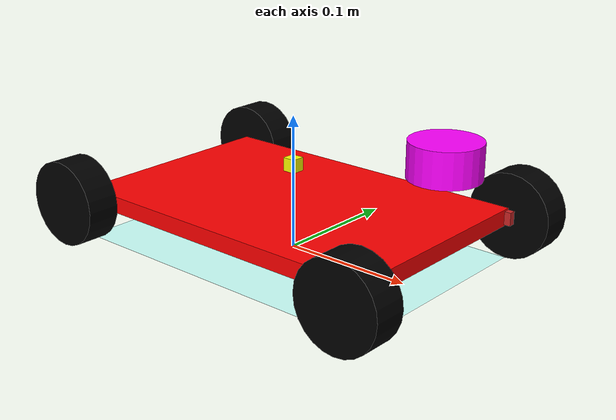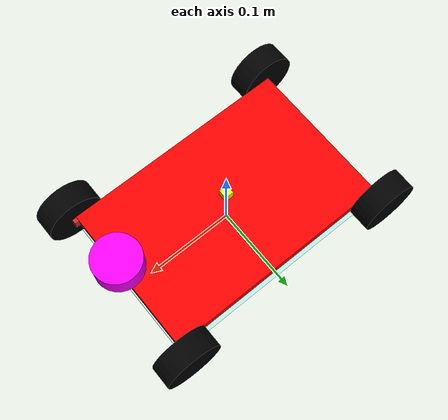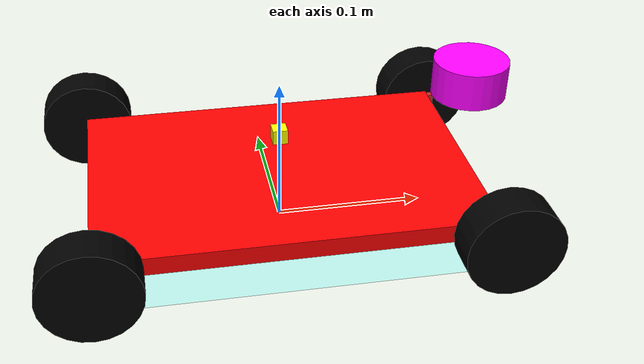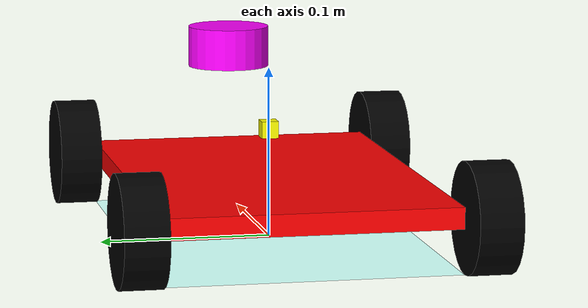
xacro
<?xml version="1.0"?>
<robot xmlns:xacro="http://www.ros.org/wiki/xacro" name="smartcar">
    <xacro:property name="chassis_thickness" value="0.0125"/>
    <xacro:property name="wheelbase_length" value="0.257"/>
    <xacro:property name="wheelbase_width" value="0.17"/>

    <xacro:include filename="wheels.xacro"/>
    <xacro:include filename="materials.xacro"/>

    <link name="base_link">
        <origin xyz="0 0 0" rpy="0 0 0" />
    </link>

    <joint name="base_to_chassis" type="fixed">
        <origin xyz="0 0 ${wheel_radius}" rpy="0 0 0"/>
        <parent link="base_link"/>
        <child link="chassis_link"/>
    </joint>

    <link name="chassis_link">
        <visual>
            <geometry>
                <box size="${wheelbase_length} ${wheelbase_width} ${chassis_thickness}"/>
            </geometry>
            <origin xyz="0 0 0" rpy="0 0 0"/>
            <material name="body_material"/>
        </visual>
        <collision>
            <geometry>
                <box size="${wheelbase_length} ${wheelbase_width} ${chassis_thickness}"/>
            </geometry>
            <origin xyz="0 0 0" rpy="0 0 0"/>
        </collision>
        <inertial>
            <mass value="5.0"/>
            <origin xyz="0 0 0" rpy="0 0 0"/>
            <inertia ixx="0.02" ixy="0.0" ixz="0.0" iyy="0.02" iyz="0.0" izz="0.02"/>
        </inertial>
    </link>

    <gazebo reference="chassis_link">
        <material>Gazebo/Red</material>
    </gazebo>

    <joint name="base_to_footprint" type="fixed">
        <parent link="base_link"/>
        <child link="base_footprint"/>
    </joint>

    <link name="base_footprint">
        <visual>
            <origin xyz="0 0 0.0001" rpy="0 0 0" />
            <geometry>
                <box size="${wheelbase_length} ${wheelbase_width} 0"/>
            </geometry>
            <material name="footprint_material"/>
        </visual>
    </link>

    <gazebo reference="base_footprint">
        <material>Gazebo/TurquoiseGlow</material>
    </gazebo>

    <xacro:front_wheel prefix="left" parent="base_link" x="${wheelbase_length / 2}" y="${wheelbase_width / 2}" z="${wheel_radius}" wheel_offset="${wheel_width / 2}"/>
    <xacro:front_wheel prefix="right" parent="base_link" x="${wheelbase_length / 2}" y="-${wheelbase_width / 2}" z="${wheel_radius}" wheel_offset="-${wheel_width / 2}"/>

    <xacro:back_wheel prefix="left" parent="base_link" x="-${wheelbase_length / 2}" y="${wheelbase_width / 2}" z="${wheel_radius}" wheel_offset="${wheel_width / 2}"/>
    <xacro:back_wheel prefix="right" parent="base_link" x="-${wheelbase_length / 2}" y="-${wheelbase_width / 2}" z="${wheel_radius}" wheel_offset="-${wheel_width / 2}"/>

    <xacro:include filename="sensors.xacro"/>

    <gazebo>
        <plugin name="car_gazebo_plugin" filename="libcar_gazebo_plugin.so"></plugin>
    </gazebo>
</robot>

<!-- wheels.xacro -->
<robot xmlns:xacro="http://www.ros.org/wiki/xacro">
    <xacro:property name="wheel_diameter" value="0.064"/>
    <xacro:property name="wheel_radius" value="${wheel_diameter / 2}"/>
    <xacro:property name="wheel_width" value="0.025"/>
    <xacro:property name="wheel_oriantation" value="${90 * (pi / 180)}"/>
    <xacro:property name="steer_link_size" value="0.01"/>

    <xacro:macro name="front_wheel" params="prefix parent x y z wheel_offset">
        <joint name="front_${prefix}_wheel_steer_joint" type="revolute">
            <origin xyz="${x} ${y} ${z}" rpy="0 0 0"/>
            <parent link="${parent}"/>
            <child link="front_${prefix}_wheel_steer_link"/>
            <axis xyz="0 0 1"/>
            <limit lower="-${45 * (pi / 180)}" upper="${45 * (pi / 180)}" effort="10" velocity="1"/>
        </joint>

        <link name="front_${prefix}_wheel_steer_link">
            <origin xyz="0 0 0" rpy="0 0 0" />
            <visual>
                <geometry>
                    <box size="${steer_link_size} ${steer_link_size} ${steer_link_size}"/>
                </geometry>
                <origin xyz="0 0 0" rpy="0 0 0"/>
            </visual>

            <collision>
                <geometry>
                    <box size="${steer_link_size} ${steer_link_size} ${steer_link_size}"/>
                </geometry>
                <origin xyz="0 0 0" rpy="0 0 0"/>
            </collision>

            <inertial>
                <mass value="0.1"/>
                <origin xyz="0 0 0" rpy="0 0 0"/>
                <inertia ixx="0.00005" ixy="0.0" ixz="0.0" iyy="0.00005" iyz="0.0" izz="0.00005"/>
            </inertial>
        </link>

        <gazebo reference="front_${prefix}_wheel_steer_link">
            <material>Gazebo/Red</material>
        </gazebo>

        <joint name="front_${prefix}_wheel_joint" type="continuous">
            <origin xyz="0 0 0" rpy="0 0 0" />
            <parent link="front_${prefix}_wheel_steer_link"/>
            <child link="front_${prefix}_wheel_link"/>
            <axis xyz="0 1 0"/>
        </joint>

        <link name="front_${prefix}_wheel_link">
            <visual>
                <geometry>
                    <cylinder length="${wheel_width}" radius="${wheel_radius}"/>
                </geometry>
                <origin xyz="0 ${wheel_offset} 0" rpy="${wheel_oriantation} 0 0"/>
                <material name="wheel_material"/>
            </visual>

            <collision>
                <geometry>
                    <cylinder length="${wheel_width}" radius="${wheel_radius}"/>
                </geometry>
                <origin xyz="0 ${wheel_offset} 0" rpy="${wheel_oriantation} 0 0"/>
            </collision>

            <inertial>
                <mass value="0.2"/>
                <origin xyz="0 0 0" rpy="0 0 0"/>
                <inertia ixx="0.0001" ixy="0.0" ixz="0.0" iyy="0.0001" iyz="0.0" izz="0.0001"/>
            </inertial>
        </link>

        <gazebo reference="front_${prefix}_wheel_link">
            <material>Gazebo/Black</material>
        </gazebo>
    </xacro:macro>

    <xacro:macro name="back_wheel" params="prefix parent x y z wheel_offset">
        <joint name="back_${prefix}_wheel_joint" type="continuous">
            <origin xyz="${x} ${y} ${z}" rpy="0 0 0"/>
            <parent link="${parent}"/>
            <child link="back_${prefix}_wheel_link"/>
            <axis xyz="0 1 0"/>
        </joint>

        <link name="back_${prefix}_wheel_link">
            <visual>
                <geometry>
                    <cylinder length="${wheel_width}" radius="${wheel_radius}"/>
                </geometry>
                <origin xyz="0 ${wheel_offset} 0" rpy="${wheel_oriantation} 0 0"/>
                <material name="wheel_material"/>
            </visual>

            <collision>
                <geometry>
                    <cylinder length="${wheel_width}" radius="${wheel_radius}"/>
                </geometry>
                <origin xyz="0 ${wheel_offset} 0" rpy="${wheel_oriantation} 0 0"/>
            </collision>

            <inertial>
                <mass value="0.2"/>
                <origin xyz="0 0 0" rpy="0 0 0"/>
                <inertia ixx="0.0001" ixy="0.0" ixz="0.0" iyy="0.0001" iyz="0.0" izz="0.0001"/>
            </inertial>
        </link>

        <gazebo reference="back_${prefix}_wheel_link">
            <material>Gazebo/Black</material>
        </gazebo>
    </xacro:macro>
</robot>

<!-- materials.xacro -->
<robot xmlns:xacro="http://www.ros.org/wiki/xacro">
    <material name="body_material">
        <color rgba="1 0 0 1"/>
    </material>

    <material name="wheel_material">
        <color rgba="0 0 0 1"/>
    </material>

    <material name="imu_material">
        <color rgba="1 1 0 1"/>
    </material>

    <material name="lidar_material">
        <color rgba="1 0 1 1"/>
    </material>

    <material name="footprint_material">
        <color rgba="0 1 1 0.1"/>
    </material>
</robot>

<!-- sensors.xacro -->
<robot xmlns:xacro="http://www.ros.org/wiki/xacro">
    <xacro:property name="imu_size" value="0.01"/>
    <xacro:property name="lidar_size" value="0.025"/>

    <link name="imu_link">
        <visual>
            <origin xyz="0 0 0" rpy="0 0 0"/>
            <geometry>
                <box size="${imu_size} ${imu_size} ${imu_size}"/>
            </geometry>
            <material name="imu_material"/>
        </visual>

        <collision>
            <origin xyz="0 0 0" rpy="0 0 0"/>
            <geometry>
                <box size="${imu_size} ${imu_size} ${imu_size}"/>
            </geometry>
        </collision>

        <inertial>
            <mass value="0.1"/>
            <origin xyz="0 0 0" rpy="0 0 0"/>
            <inertia ixx="0.00001" ixy="0.0" ixz="0.0" iyy="0.00001" iyz="0.0" izz="0.00001"/>
        </inertial>
    </link>

    <gazebo reference="imu_link">
        <sensor name="my_imu" type="imu">
            <always_on>true</always_on>
            <update_rate>30</update_rate>
            <plugin name="my_imu_plugin" filename="libgazebo_ros_imu_sensor.so">
                <ros>
                    <remapping>~/out:=imu_data</remapping>
                </ros>
            </plugin>
        </sensor>

        <material>Gazebo/Yellow</material>
    </gazebo>

    <joint name="base_to_imu" type="fixed">
        <origin xyz="0 0 ${wheel_diameter}" rpy="0 0 0"/>
        <parent link="base_link"/>
        <child link="imu_link"/>
    </joint>

    <link name="sllidar_base_link">
        <visual>
            <origin xyz="0 0 0" rpy="0 0 0"/>
            <geometry>
                <cylinder length="${lidar_size}" radius="${lidar_size}"/>
            </geometry>
            <material name="lidar_material"/>
        </visual>

        <collision>
            <origin xyz="0 0 0" rpy="0 0 0"/>
            <geometry>
                <cylinder length="${lidar_size}" radius="${lidar_size}"/>
            </geometry>
        </collision>

        <inertial>
            <mass value="0.2"/>
            <origin xyz="0 0 0" rpy="0 0 0"/>
            <inertia ixx="0.0001" ixy="0.0" ixz="0.0" iyy="0.0001" iyz="0.0" izz="0.0001"/>
        </inertial>
    </link>

    <gazebo reference="sllidar_base_link">
        <sensor name="sensor_gpu_ray" type="ray">
            <visualize>false</visualize>
            <ray>
                <scan>
                    <horizontal>
                        <samples>360</samples>
                        <resolution>1.0</resolution>
                        <min_angle>-${pi}</min_angle>
                        <max_angle>${pi}</max_angle>
                    </horizontal>
                </scan>
                <range>
                    <min>0.5</min>
                    <max>50.0</max>
                </range>
            </ray>
            <always_on>true</always_on>

            <plugin name="laser_scan_plugin" filename="libgazebo_ros_ray_sensor.so">
                <output_type>sensor_msgs/LaserScan</output_type>
                <frameName>sllidar_base_link</frameName>
                <topicName>/scan</topicName>
                <remapping>~/out:=scan</remapping>
                <robotNamespace>/</robotNamespace>
                <updateRate>30.0</updateRate>
            </plugin>
        </sensor>

        <material>Gazebo/Purple</material>
    </gazebo>

    <joint name="base_to_lidar" type="fixed">
        <origin xyz="${wheelbase_length / 2} 0 ${wheel_diameter * 1.5}" rpy="0 0 0"/>
        <parent link="base_link"/>
        <child link="sllidar_base_link"/>
    </joint>
</robot>
